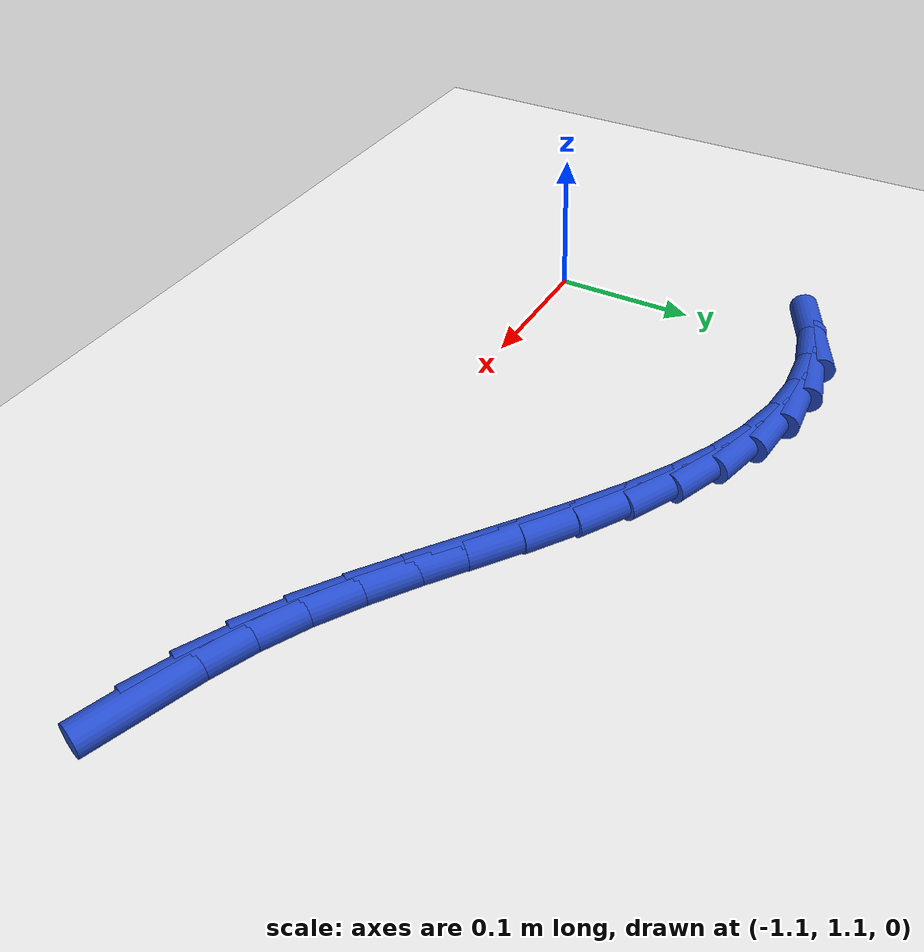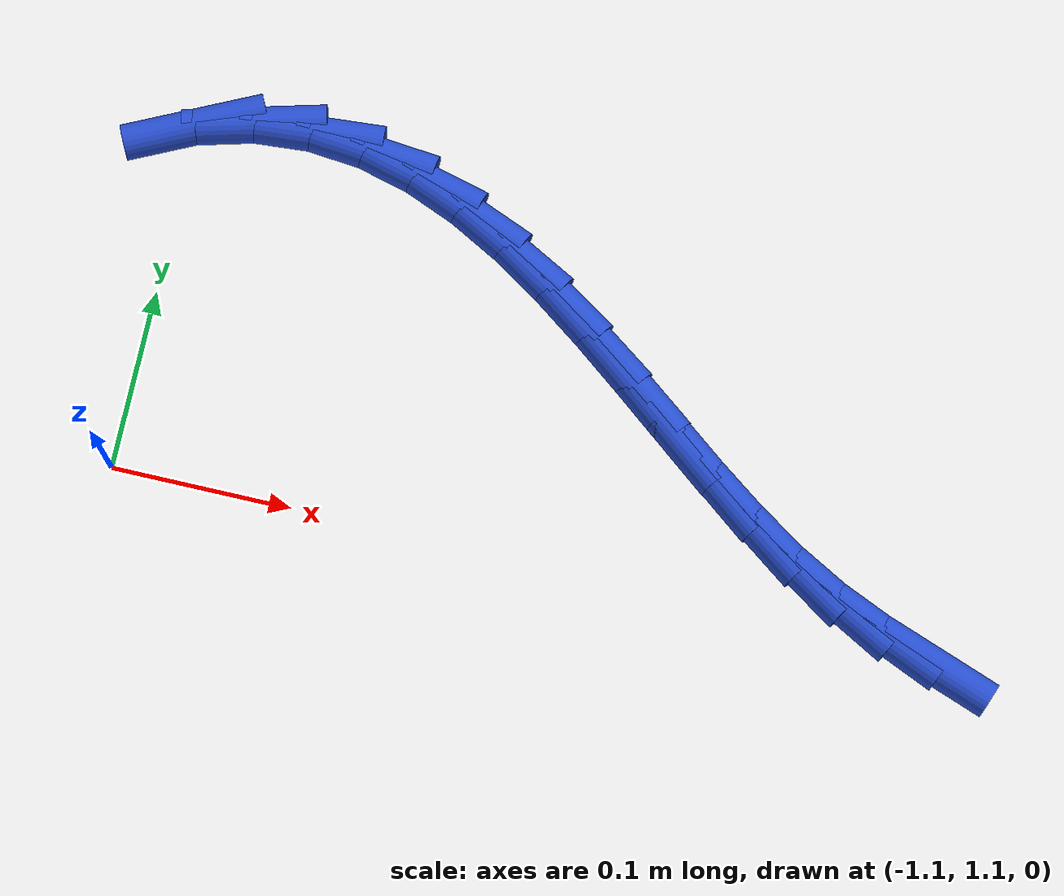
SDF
<sdf version="1.6">
 <world name="default">
  <model name="ground_plane">
   <static>1</static>
   <link name="link">
    <collision name="collision">
     <geometry><plane><normal>0 0 1</normal><size>100 100</size></plane></geometry>
     <surface><friction><ode><mu>100</mu><mu2>50</mu2></ode></friction></surface>
    </collision>
    <visual name="visual">
     <cast_shadows>0</cast_shadows>
     <geometry><plane><normal>0 0 1</normal><size>100 100</size></plane></geometry>
     <material>
      <script><uri>file://media/materials/scripts/gazebo.material</uri><name>Gazebo/WhiteGlow</name></script>
     </material>
    </visual>
   </link>
  </model>
  <model name="line">
   <link name="link_50">
    <pose>-0.6492798583264782 1.0940011809941956 0.01 0 1.57 -0.3479539092925341</pose>
    <collision name="collision">
     <geometry><cylinder><radius>0.01</radius><length>0.08</length></cylinder></geometry>
    </collision>
    <visual name="visual">
     <material>
      <script><name>Gazebo/Blue</name><uri>file://media/materials/scripts/gazebo.material</uri></script>
     </material>
     <geometry><cylinder><radius>0.01</radius><length>0.08</length></cylinder></geometry>
    </visual>
   </link>
   <link name="link_51">
    <pose>-0.6768786216156751 1.1040115697811879 0.01 0 1.57 -0.4116074694319122</pose>
    <collision name="collision">
     <geometry><cylinder><radius>0.01</radius><length>0.08</length></cylinder></geometry>
    </collision>
    <visual name="visual">
     <material>
      <script><name>Gazebo/Blue</name><uri>file://media/materials/scripts/gazebo.material</uri></script>
     </material>
     <geometry><cylinder><radius>0.01</radius><length>0.08</length></cylinder></geometry>
    </visual>
   </link>
   <link name="link_52">
    <pose>-0.7040937286868176 1.1158921524932235 0.01 0 1.57 -0.499039388053943</pose>
    <collision name="collision">
     <geometry><cylinder><radius>0.01</radius><length>0.08</length></cylinder></geometry>
    </collision>
    <visual name="visual">
     <material>
      <script><name>Gazebo/Blue</name><uri>file://media/materials/scripts/gazebo.material</uri></script>
     </material>
     <geometry><cylinder><radius>0.01</radius><length>0.08</length></cylinder></geometry>
    </visual>
   </link>
   <link name="link_53">
    <pose>-0.7309586160008682 1.130535016229455 0.01 0 1.57 -0.5765115334328594</pose>
    <collision name="collision">
     <geometry><cylinder><radius>0.01</radius><length>0.08</length></cylinder></geometry>
    </collision>
    <visual name="visual">
     <material>
      <script><name>Gazebo/Blue</name><uri>file://media/materials/scripts/gazebo.material</uri></script>
     </material>
     <geometry><cylinder><radius>0.01</radius><length>0.08</length></cylinder></geometry>
    </visual>
   </link>
   <link name="link_54">
    <pose>-0.757564124297152 1.1478337560207574 0.01 0 1.57 -0.6280373991442904</pose>
    <collision name="collision">
     <geometry><cylinder><radius>0.01</radius><length>0.08</length></cylinder></geometry>
    </collision>
    <visual name="visual">
     <material>
      <script><name>Gazebo/Blue</name><uri>file://media/materials/scripts/gazebo.material</uri></script>
     </material>
     <geometry><cylinder><radius>0.01</radius><length>0.08</length></cylinder></geometry>
    </visual>
   </link>
   <link name="link_55">
    <pose>-0.7840370753121501 1.1670561121482994 0.01 0 1.57 -0.6567451833138885</pose>
    <collision name="collision">
     <geometry><cylinder><radius>0.01</radius><length>0.08</length></cylinder></geometry>
    </collision>
    <visual name="visual">
     <material>
      <script><name>Gazebo/Blue</name><uri>file://media/materials/scripts/gazebo.material</uri></script>
     </material>
     <geometry><cylinder><radius>0.01</radius><length>0.08</length></cylinder></geometry>
    </visual>
   </link>
   <link name="link_56">
    <pose>-0.8105048448410335 1.1874601875765962 0.01 0 1.57 -0.6648470650109151</pose>
    <collision name="collision">
     <geometry><cylinder><radius>0.01</radius><length>0.08</length></cylinder></geometry>
    </collision>
    <visual name="visual">
     <material>
      <script><name>Gazebo/Blue</name><uri>file://media/materials/scripts/gazebo.material</uri></script>
     </material>
     <geometry><cylinder><radius>0.01</radius><length>0.08</length></cylinder></geometry>
    </visual>
   </link>
   <link name="link_57">
    <pose>-0.8370948086789722 1.2083040852701608 0.01 0 1.57 -0.6532573071046962</pose>
    <collision name="collision">
     <geometry><cylinder><radius>0.01</radius><length>0.08</length></cylinder></geometry>
    </collision>
    <visual name="visual">
     <material>
      <script><name>Gazebo/Blue</name><uri>file://media/materials/scripts/gazebo.material</uri></script>
     </material>
     <geometry><cylinder><radius>0.01</radius><length>0.08</length></cylinder></geometry>
    </visual>
   </link>
   <link name="link_58">
    <pose>-0.8639343426211386 1.228845908193509 0.01 0 1.57 -0.6216472356482553</pose>
    <collision name="collision">
     <geometry><cylinder><radius>0.01</radius><length>0.08</length></cylinder></geometry>
    </collision>
    <visual name="visual">
     <material>
      <script><name>Gazebo/Blue</name><uri>file://media/materials/scripts/gazebo.material</uri></script>
     </material>
     <geometry><cylinder><radius>0.01</radius><length>0.08</length></cylinder></geometry>
    </visual>
   </link>
   <link name="link_59">
    <pose>-0.891150822462703 1.248343759311154 0.01 0 1.57 -0.5685622092272419</pose>
    <collision name="collision">
     <geometry><cylinder><radius>0.01</radius><length>0.08</length></cylinder></geometry>
    </collision>
    <visual name="visual">
     <material>
      <script><name>Gazebo/Blue</name><uri>file://media/materials/scripts/gazebo.material</uri></script>
     </material>
     <geometry><cylinder><radius>0.01</radius><length>0.08</length></cylinder></geometry>
    </visual>
   </link>
   <link name="link_60">
    <pose>-0.9188716239988364 1.2660557415876106 0.01 0 1.57 -0.49168249041199735</pose>
    <collision name="collision">
     <geometry><cylinder><radius>0.01</radius><length>0.08</length></cylinder></geometry>
    </collision>
    <visual name="visual">
     <material>
      <script><name>Gazebo/Blue</name><uri>file://media/materials/scripts/gazebo.material</uri></script>
     </material>
     <geometry><cylinder><radius>0.01</radius><length>0.08</length></cylinder></geometry>
    </visual>
   </link>
   <link name="link_61">
    <pose>-0.9472241230247095 1.2812399579873932 0.01 0 1.57 -0.3884738982829614</pose>
    <collision name="collision">
     <geometry><cylinder><radius>0.01</radius><length>0.08</length></cylinder></geometry>
    </collision>
    <visual name="visual">
     <material>
      <script><name>Gazebo/Blue</name><uri>file://media/materials/scripts/gazebo.material</uri></script>
     </material>
     <geometry><cylinder><radius>0.01</radius><length>0.08</length></cylinder></geometry>
    </visual>
   </link>
   <link name="link_62">
    <pose>-0.9763356953354941 1.2931545114750163 0.01 0 1.57 -0.25759734334213913</pose>
    <collision name="collision">
     <geometry><cylinder><radius>0.01</radius><length>0.08</length></cylinder></geometry>
    </collision>
    <visual name="visual">
     <material>
      <script><name>Gazebo/Blue</name><uri>file://media/materials/scripts/gazebo.material</uri></script>
     </material>
     <geometry><cylinder><radius>0.01</radius><length>0.08</length></cylinder></geometry>
    </visual>
   </link>
   <link name="link_63">
    <pose>-1.0063337167263604 1.3010575050149935 0.01 0 1.57 -0.10126697652020848</pose>
    <collision name="collision">
     <geometry><cylinder><radius>0.01</radius><length>0.08</length></cylinder></geometry>
    </collision>
    <visual name="visual">
     <material>
      <script><name>Gazebo/Blue</name><uri>file://media/materials/scripts/gazebo.material</uri></script>
     </material>
     <geometry><cylinder><radius>0.01</radius><length>0.08</length></cylinder></geometry>
    </visual>
   </link>
   <link name="link_64">
    <pose>-1.0373355784310672 1.3042077457591437 0.01 0 1.57 0.07285795637370492</pose>
    <collision name="collision">
     <geometry><cylinder><radius>0.01</radius><length>0.08</length></cylinder></geometry>
    </collision>
    <visual name="visual">
     <material>
      <script><name>Gazebo/Blue</name><uri>file://media/materials/scripts/gazebo.material</uri></script>
     </material>
     <geometry><cylinder><radius>0.01</radius><length>0.08</length></cylinder></geometry>
    </visual>
   </link>
   <link name="link_65">
    <pose>-1.069105739952479 1.301888932292535 0.01 0 1.57 0.2599042513969622</pose>
    <collision name="collision">
     <geometry><cylinder><radius>0.01</radius><length>0.08</length></cylinder></geometry>
    </collision>
    <visual name="visual">
     <material>
      <script><name>Gazebo/Blue</name><uri>file://media/materials/scripts/gazebo.material</uri></script>
     </material>
     <geometry><cylinder><radius>0.01</radius><length>0.08</length></cylinder></geometry>
    </visual>
   </link>
   <link name="link_66">
    <pose>-1.1009695833628423 1.2934157302842366 0.01 0 1.57 0.4505139508296998</pose>
    <collision name="collision">
     <geometry><cylinder><radius>0.01</radius><length>0.08</length></cylinder></geometry>
    </collision>
    <visual name="visual">
     <material>
      <script><name>Gazebo/Blue</name><uri>file://media/materials/scripts/gazebo.material</uri></script>
     </material>
     <geometry><cylinder><radius>0.01</radius><length>0.08</length></cylinder></geometry>
    </visual>
   </link>
  </model>
 </world>
</sdf>
